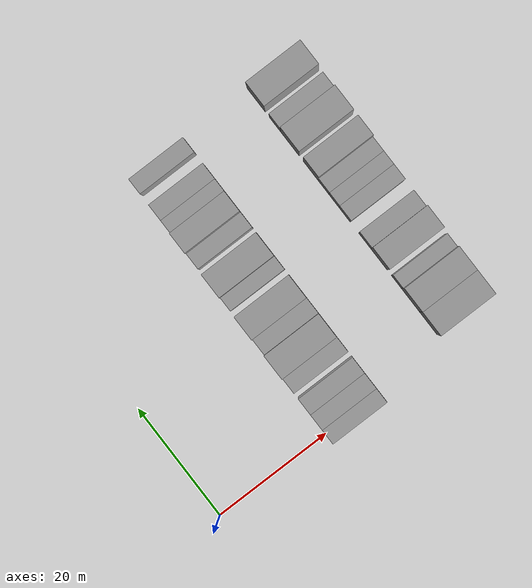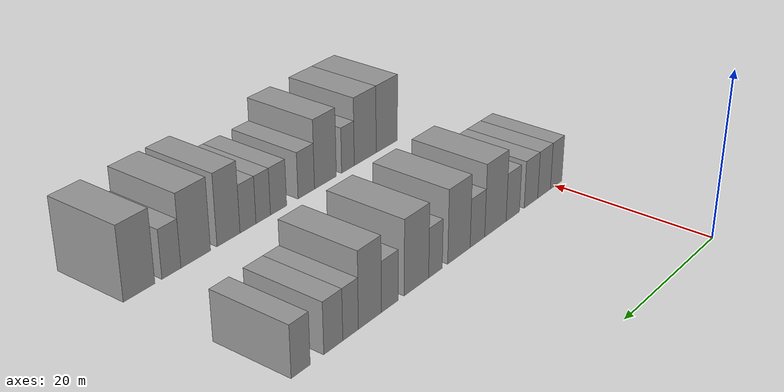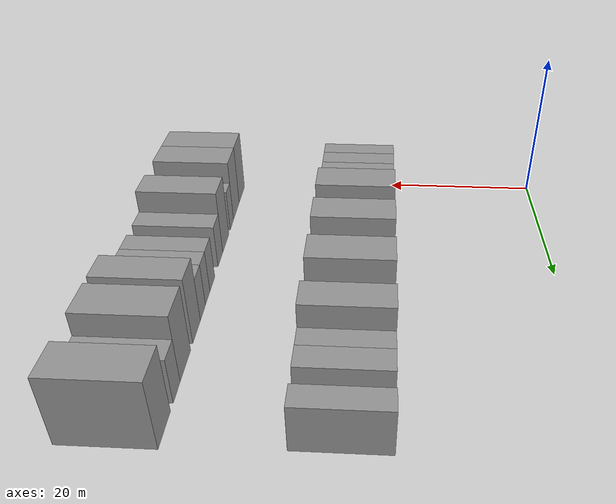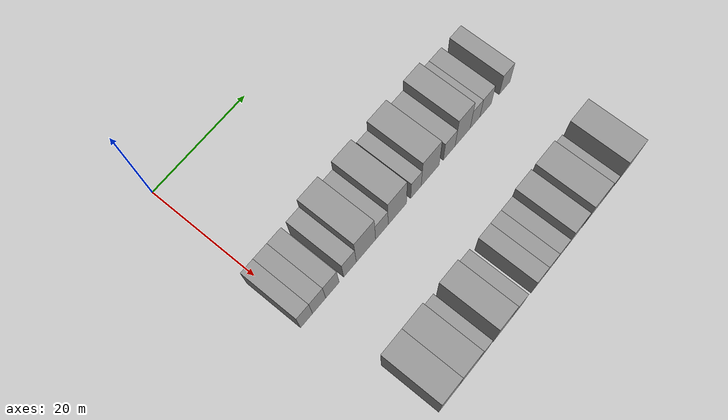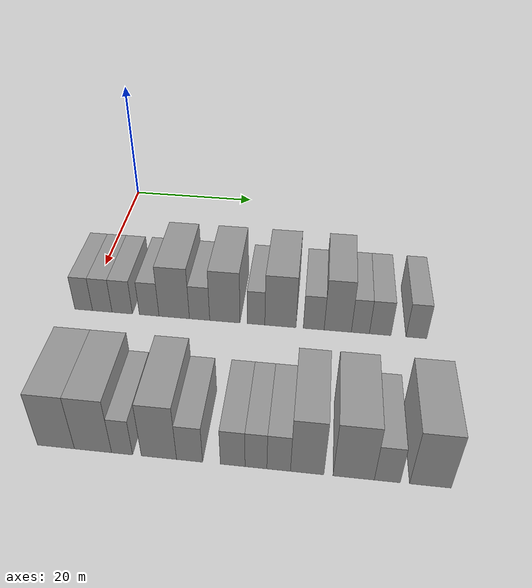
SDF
<sdf version="1.6">
 <world name="default">
  <model name="building_53">
   <static>1</static>
   <pose>25.0000 -0.1891 0 0.000000 0.000000 0.000000</pose>
   <link name="link">
    <pose>0 0 3.00 0 0 0</pose>
    <collision name="collision"><geometry><box><size>10.0000 2.5659 6.0000</size></box></geometry></collision>
    <visual name="visual">
     <cast_shadows>0</cast_shadows>
     <geometry><box><size>10.0000 2.5659 6.0000</size></box></geometry>
     <material>
      <script>
       <uri>model://grey_wall/materials/scripts</uri>
       <uri>model://grey_wall/materials/textures</uri>
       <name>vrc/grey_wall</name>
      </script>
     </material>
    </visual>
   </link>
  </model>
  <model name="building_54">
   <static>1</static>
   <pose>25.0000 2.5082 0 0.000000 0.000000 0.000000</pose>
   <link name="link">
    <pose>0 0 3.00 0 0 0</pose>
    <collision name="collision"><geometry><box><size>10.0000 2.8288 6.0000</size></box></geometry></collision>
    <visual name="visual">
     <cast_shadows>0</cast_shadows>
     <geometry><box><size>10.0000 2.8288 6.0000</size></box></geometry>
     <material>
      <script>
       <uri>model://grey_wall/materials/scripts</uri>
       <uri>model://grey_wall/materials/textures</uri>
       <name>vrc/grey_wall</name>
      </script>
     </material>
    </visual>
   </link>
  </model>
  <model name="building_55">
   <static>1</static>
   <pose>25.0000 5.3871 0 0.000000 0.000000 0.000000</pose>
   <link name="link">
    <pose>0 0 3.00 0 0 0</pose>
    <collision name="collision"><geometry><box><size>10.0000 2.9290 6.0000</size></box></geometry></collision>
    <visual name="visual">
     <cast_shadows>0</cast_shadows>
     <geometry><box><size>10.0000 2.9290 6.0000</size></box></geometry>
     <material>
      <script>
       <uri>model://grey_wall/materials/scripts</uri>
       <uri>model://grey_wall/materials/textures</uri>
       <name>vrc/grey_wall</name>
      </script>
     </material>
    </visual>
   </link>
  </model>
  <model name="building_56">
   <static>1</static>
   <pose>25.0000 9.2515 0 0.000000 0.000000 0.000000</pose>
   <link name="link">
    <pose>0 0 3.00 0 0 0</pose>
    <collision name="collision"><geometry><box><size>10.0000 2.7997 6.0000</size></box></geometry></collision>
    <visual name="visual">
     <cast_shadows>0</cast_shadows>
     <geometry><box><size>10.0000 2.7997 6.0000</size></box></geometry>
     <material>
      <script>
       <uri>model://grey_wall/materials/scripts</uri>
       <uri>model://grey_wall/materials/textures</uri>
       <name>vrc/grey_wall</name>
      </script>
     </material>
    </visual>
   </link>
  </model>
  <model name="building_57">
   <static>1</static>
   <pose>25.0000 12.8071 0 0.000000 0.000000 0.000000</pose>
   <link name="link">
    <pose>0 0 4.50 0 0 0</pose>
    <collision name="collision"><geometry><box><size>10.0000 4.3115 9.0000</size></box></geometry></collision>
    <visual name="visual">
     <cast_shadows>0</cast_shadows>
     <geometry><box><size>10.0000 4.3115 9.0000</size></box></geometry>
     <material>
      <script>
       <uri>model://grey_wall/materials/scripts</uri>
       <uri>model://grey_wall/materials/textures</uri>
       <name>vrc/grey_wall</name>
      </script>
     </material>
    </visual>
   </link>
  </model>
  <model name="building_58">
   <static>1</static>
   <pose>25.0000 16.3882 0 0.000000 0.000000 0.000000</pose>
   <link name="link">
    <pose>0 0 3.00 0 0 0</pose>
    <collision name="collision"><geometry><box><size>10.0000 2.8509 6.0000</size></box></geometry></collision>
    <visual name="visual">
     <cast_shadows>0</cast_shadows>
     <geometry><box><size>10.0000 2.8509 6.0000</size></box></geometry>
     <material>
      <script>
       <uri>model://grey_wall/materials/scripts</uri>
       <uri>model://grey_wall/materials/textures</uri>
       <name>vrc/grey_wall</name>
      </script>
     </material>
    </visual>
   </link>
  </model>
  <model name="building_59">
   <static>1</static>
   <pose>25.0000 19.9264 0 0.000000 0.000000 0.000000</pose>
   <link name="link">
    <pose>0 0 4.50 0 0 0</pose>
    <collision name="collision"><geometry><box><size>10.0000 4.2254 9.0000</size></box></geometry></collision>
    <visual name="visual">
     <cast_shadows>0</cast_shadows>
     <geometry><box><size>10.0000 4.2254 9.0000</size></box></geometry>
     <material>
      <script>
       <uri>model://grey_wall/materials/scripts</uri>
       <uri>model://grey_wall/materials/textures</uri>
       <name>vrc/grey_wall</name>
      </script>
     </material>
    </visual>
   </link>
  </model>
  <model name="building_60">
   <static>1</static>
   <pose>25.0000 24.2655 0 0.000000 0.000000 0.000000</pose>
   <link name="link">
    <pose>0 0 3.00 0 0 0</pose>
    <collision name="collision"><geometry><box><size>10.0000 2.4528 6.0000</size></box></geometry></collision>
    <visual name="visual">
     <cast_shadows>0</cast_shadows>
     <geometry><box><size>10.0000 2.4528 6.0000</size></box></geometry>
     <material>
      <script>
       <uri>model://grey_wall/materials/scripts</uri>
       <uri>model://grey_wall/materials/textures</uri>
       <name>vrc/grey_wall</name>
      </script>
     </material>
    </visual>
   </link>
  </model>
  <model name="building_61">
   <static>1</static>
   <pose>25.0000 27.6315 0 0.000000 0.000000 0.000000</pose>
   <link name="link">
    <pose>0 0 4.50 0 0 0</pose>
    <collision name="collision"><geometry><box><size>10.0000 4.2791 9.0000</size></box></geometry></collision>
    <visual name="visual">
     <cast_shadows>0</cast_shadows>
     <geometry><box><size>10.0000 4.2791 9.0000</size></box></geometry>
     <material>
      <script>
       <uri>model://grey_wall/materials/scripts</uri>
       <uri>model://grey_wall/materials/textures</uri>
       <name>vrc/grey_wall</name>
      </script>
     </material>
    </visual>
   </link>
  </model>
  <model name="building_62">
   <static>1</static>
   <pose>25.0000 32.1901 0 0.000000 0.000000 0.000000</pose>
   <link name="link">
    <pose>0 0 3.00 0 0 0</pose>
    <collision name="collision"><geometry><box><size>10.0000 2.8381 6.0000</size></box></geometry></collision>
    <visual name="visual">
     <cast_shadows>0</cast_shadows>
     <geometry><box><size>10.0000 2.8381 6.0000</size></box></geometry>
     <material>
      <script>
       <uri>model://grey_wall/materials/scripts</uri>
       <uri>model://grey_wall/materials/textures</uri>
       <name>vrc/grey_wall</name>
      </script>
     </material>
    </visual>
   </link>
  </model>
  <model name="building_63">
   <static>1</static>
   <pose>25.0000 35.4523 0 0.000000 0.000000 0.000000</pose>
   <link name="link">
    <pose>0 0 4.50 0 0 0</pose>
    <collision name="collision"><geometry><box><size>10.0000 3.6864 9.0000</size></box></geometry></collision>
    <visual name="visual">
     <cast_shadows>0</cast_shadows>
     <geometry><box><size>10.0000 3.6864 9.0000</size></box></geometry>
     <material>
      <script>
       <uri>model://grey_wall/materials/scripts</uri>
       <uri>model://grey_wall/materials/textures</uri>
       <name>vrc/grey_wall</name>
      </script>
     </material>
    </visual>
   </link>
  </model>
  <model name="building_64">
   <static>1</static>
   <pose>25.0000 38.5100 0 0.000000 0.000000 0.000000</pose>
   <link name="link">
    <pose>0 0 3.00 0 0 0</pose>
    <collision name="collision"><geometry><box><size>10.0000 2.4288 6.0000</size></box></geometry></collision>
    <visual name="visual">
     <cast_shadows>0</cast_shadows>
     <geometry><box><size>10.0000 2.4288 6.0000</size></box></geometry>
     <material>
      <script>
       <uri>model://grey_wall/materials/scripts</uri>
       <uri>model://grey_wall/materials/textures</uri>
       <name>vrc/grey_wall</name>
      </script>
     </material>
    </visual>
   </link>
  </model>
  <model name="building_65">
   <static>1</static>
   <pose>25.0000 41.1682 0 0.000000 0.000000 0.000000</pose>
   <link name="link">
    <pose>0 0 3.00 0 0 0</pose>
    <collision name="collision"><geometry><box><size>10.0000 2.8877 6.0000</size></box></geometry></collision>
    <visual name="visual">
     <cast_shadows>0</cast_shadows>
     <geometry><box><size>10.0000 2.8877 6.0000</size></box></geometry>
     <material>
      <script>
       <uri>model://grey_wall/materials/scripts</uri>
       <uri>model://grey_wall/materials/textures</uri>
       <name>vrc/grey_wall</name>
      </script>
     </material>
    </visual>
   </link>
  </model>
  <model name="building_66">
   <static>1</static>
   <pose>25.0000 45.9838 0 0.000000 0.000000 0.000000</pose>
   <link name="link">
    <pose>0 0 3.00 0 0 0</pose>
    <collision name="collision"><geometry><box><size>10.0000 2.7433 6.0000</size></box></geometry></collision>
    <visual name="visual">
     <cast_shadows>0</cast_shadows>
     <geometry><box><size>10.0000 2.7433 6.0000</size></box></geometry>
     <material>
      <script>
       <uri>model://grey_wall/materials/scripts</uri>
       <uri>model://grey_wall/materials/textures</uri>
       <name>vrc/grey_wall</name>
      </script>
     </material>
    </visual>
   </link>
  </model>
  <model name="building_157">
   <static>1</static>
   <pose>47.0000 3.7697 0 0.000000 0.000000 0.000000</pose>
   <link name="link">
    <pose>0 0 4.50 0 0 0</pose>
    <collision name="collision"><geometry><box><size>10.0000 4.3552 9.0000</size></box></geometry></collision>
    <visual name="visual">
     <cast_shadows>0</cast_shadows>
     <geometry><box><size>10.0000 4.3552 9.0000</size></box></geometry>
     <material>
      <script>
       <uri>model://grey_wall/materials/scripts</uri>
       <uri>model://grey_wall/materials/textures</uri>
       <name>vrc/grey_wall</name>
      </script>
     </material>
    </visual>
   </link>
  </model>
  <model name="building_158">
   <static>1</static>
   <pose>47.0000 8.1143 0 0.000000 0.000000 0.000000</pose>
   <link name="link">
    <pose>0 0 4.50 0 0 0</pose>
    <collision name="collision"><geometry><box><size>10.0000 4.3340 9.0000</size></box></geometry></collision>
    <visual name="visual">
     <cast_shadows>0</cast_shadows>
     <geometry><box><size>10.0000 4.3340 9.0000</size></box></geometry>
     <material>
      <script>
       <uri>model://grey_wall/materials/scripts</uri>
       <uri>model://grey_wall/materials/textures</uri>
       <name>vrc/grey_wall</name>
      </script>
     </material>
    </visual>
   </link>
  </model>
  <model name="building_159">
   <static>1</static>
   <pose>47.0000 11.4961 0 0.000000 0.000000 0.000000</pose>
   <link name="link">
    <pose>0 0 3.00 0 0 0</pose>
    <collision name="collision"><geometry><box><size>10.0000 2.4295 6.0000</size></box></geometry></collision>
    <visual name="visual">
     <cast_shadows>0</cast_shadows>
     <geometry><box><size>10.0000 2.4295 6.0000</size></box></geometry>
     <material>
      <script>
       <uri>model://grey_wall/materials/scripts</uri>
       <uri>model://grey_wall/materials/textures</uri>
       <name>vrc/grey_wall</name>
      </script>
     </material>
    </visual>
   </link>
  </model>
  <model name="building_160">
   <static>1</static>
   <pose>47.0000 15.7279 0 0.000000 0.000000 0.000000</pose>
   <link name="link">
    <pose>0 0 4.50 0 0 0</pose>
    <collision name="collision"><geometry><box><size>10.0000 4.0341 9.0000</size></box></geometry></collision>
    <visual name="visual">
     <cast_shadows>0</cast_shadows>
     <geometry><box><size>10.0000 4.0341 9.0000</size></box></geometry>
     <material>
      <script>
       <uri>model://grey_wall/materials/scripts</uri>
       <uri>model://grey_wall/materials/textures</uri>
       <name>vrc/grey_wall</name>
      </script>
     </material>
    </visual>
   </link>
  </model>
  <model name="building_161">
   <static>1</static>
   <pose>47.0000 19.2227 0 0.000000 0.000000 0.000000</pose>
   <link name="link">
    <pose>0 0 3.00 0 0 0</pose>
    <collision name="collision"><geometry><box><size>10.0000 2.9554 6.0000</size></box></geometry></collision>
    <visual name="visual">
     <cast_shadows>0</cast_shadows>
     <geometry><box><size>10.0000 2.9554 6.0000</size></box></geometry>
     <material>
      <script>
       <uri>model://grey_wall/materials/scripts</uri>
       <uri>model://grey_wall/materials/textures</uri>
       <name>vrc/grey_wall</name>
      </script>
     </material>
    </visual>
   </link>
  </model>
  <model name="building_162">
   <static>1</static>
   <pose>47.0000 24.0837 0 0.000000 0.000000 0.000000</pose>
   <link name="link">
    <pose>0 0 3.00 0 0 0</pose>
    <collision name="collision"><geometry><box><size>10.0000 2.7666 6.0000</size></box></geometry></collision>
    <visual name="visual">
     <cast_shadows>0</cast_shadows>
     <geometry><box><size>10.0000 2.7666 6.0000</size></box></geometry>
     <material>
      <script>
       <uri>model://grey_wall/materials/scripts</uri>
       <uri>model://grey_wall/materials/textures</uri>
       <name>vrc/grey_wall</name>
      </script>
     </material>
    </visual>
   </link>
  </model>
  <model name="building_163">
   <static>1</static>
   <pose>47.0000 26.6820 0 0.000000 0.000000 0.000000</pose>
   <link name="link">
    <pose>0 0 3.00 0 0 0</pose>
    <collision name="collision"><geometry><box><size>10.0000 2.4300 6.0000</size></box></geometry></collision>
    <visual name="visual">
     <cast_shadows>0</cast_shadows>
     <geometry><box><size>10.0000 2.4300 6.0000</size></box></geometry>
     <material>
      <script>
       <uri>model://grey_wall/materials/scripts</uri>
       <uri>model://grey_wall/materials/textures</uri>
       <name>vrc/grey_wall</name>
      </script>
     </material>
    </visual>
   </link>
  </model>
  <model name="building_164">
   <static>1</static>
   <pose>47.0000 29.2029 0 0.000000 0.000000 0.000000</pose>
   <link name="link">
    <pose>0 0 3.00 0 0 0</pose>
    <collision name="collision"><geometry><box><size>10.0000 2.6118 6.0000</size></box></geometry></collision>
    <visual name="visual">
     <cast_shadows>0</cast_shadows>
     <geometry><box><size>10.0000 2.6118 6.0000</size></box></geometry>
     <material>
      <script>
       <uri>model://grey_wall/materials/scripts</uri>
       <uri>model://grey_wall/materials/textures</uri>
       <name>vrc/grey_wall</name>
      </script>
     </material>
    </visual>
   </link>
  </model>
  <model name="building_165">
   <static>1</static>
   <pose>47.0000 32.3394 0 0.000000 0.000000 0.000000</pose>
   <link name="link">
    <pose>0 0 4.50 0 0 0</pose>
    <collision name="collision"><geometry><box><size>10.0000 3.6612 9.0000</size></box></geometry></collision>
    <visual name="visual">
     <cast_shadows>0</cast_shadows>
     <geometry><box><size>10.0000 3.6612 9.0000</size></box></geometry>
     <material>
      <script>
       <uri>model://grey_wall/materials/scripts</uri>
       <uri>model://grey_wall/materials/textures</uri>
       <name>vrc/grey_wall</name>
      </script>
     </material>
    </visual>
   </link>
  </model>
  <model name="building_166">
   <static>1</static>
   <pose>47.0000 37.4096 0 0.000000 0.000000 0.000000</pose>
   <link name="link">
    <pose>0 0 4.50 0 0 0</pose>
    <collision name="collision"><geometry><box><size>10.0000 4.4792 9.0000</size></box></geometry></collision>
    <visual name="visual">
     <cast_shadows>0</cast_shadows>
     <geometry><box><size>10.0000 4.4792 9.0000</size></box></geometry>
     <material>
      <script>
       <uri>model://grey_wall/materials/scripts</uri>
       <uri>model://grey_wall/materials/textures</uri>
       <name>vrc/grey_wall</name>
      </script>
     </material>
    </visual>
   </link>
  </model>
  <model name="building_167">
   <static>1</static>
   <pose>47.0000 41.0374 0 0.000000 0.000000 0.000000</pose>
   <link name="link">
    <pose>0 0 3.00 0 0 0</pose>
    <collision name="collision"><geometry><box><size>10.0000 2.7763 6.0000</size></box></geometry></collision>
    <visual name="visual">
     <cast_shadows>0</cast_shadows>
     <geometry><box><size>10.0000 2.7763 6.0000</size></box></geometry>
     <material>
      <script>
       <uri>model://grey_wall/materials/scripts</uri>
       <uri>model://grey_wall/materials/textures</uri>
       <name>vrc/grey_wall</name>
      </script>
     </material>
    </visual>
   </link>
  </model>
  <model name="building_168">
   <static>1</static>
   <pose>47.0000 45.6318 0 0.000000 0.000000 0.000000</pose>
   <link name="link">
    <pose>0 0 4.50 0 0 0</pose>
    <collision name="collision"><geometry><box><size>10.0000 4.4126 9.0000</size></box></geometry></collision>
    <visual name="visual">
     <cast_shadows>0</cast_shadows>
     <geometry><box><size>10.0000 4.4126 9.0000</size></box></geometry>
     <material>
      <script>
       <uri>model://grey_wall/materials/scripts</uri>
       <uri>model://grey_wall/materials/textures</uri>
       <name>vrc/grey_wall</name>
      </script>
     </material>
    </visual>
   </link>
  </model>
 </world>
</sdf>
